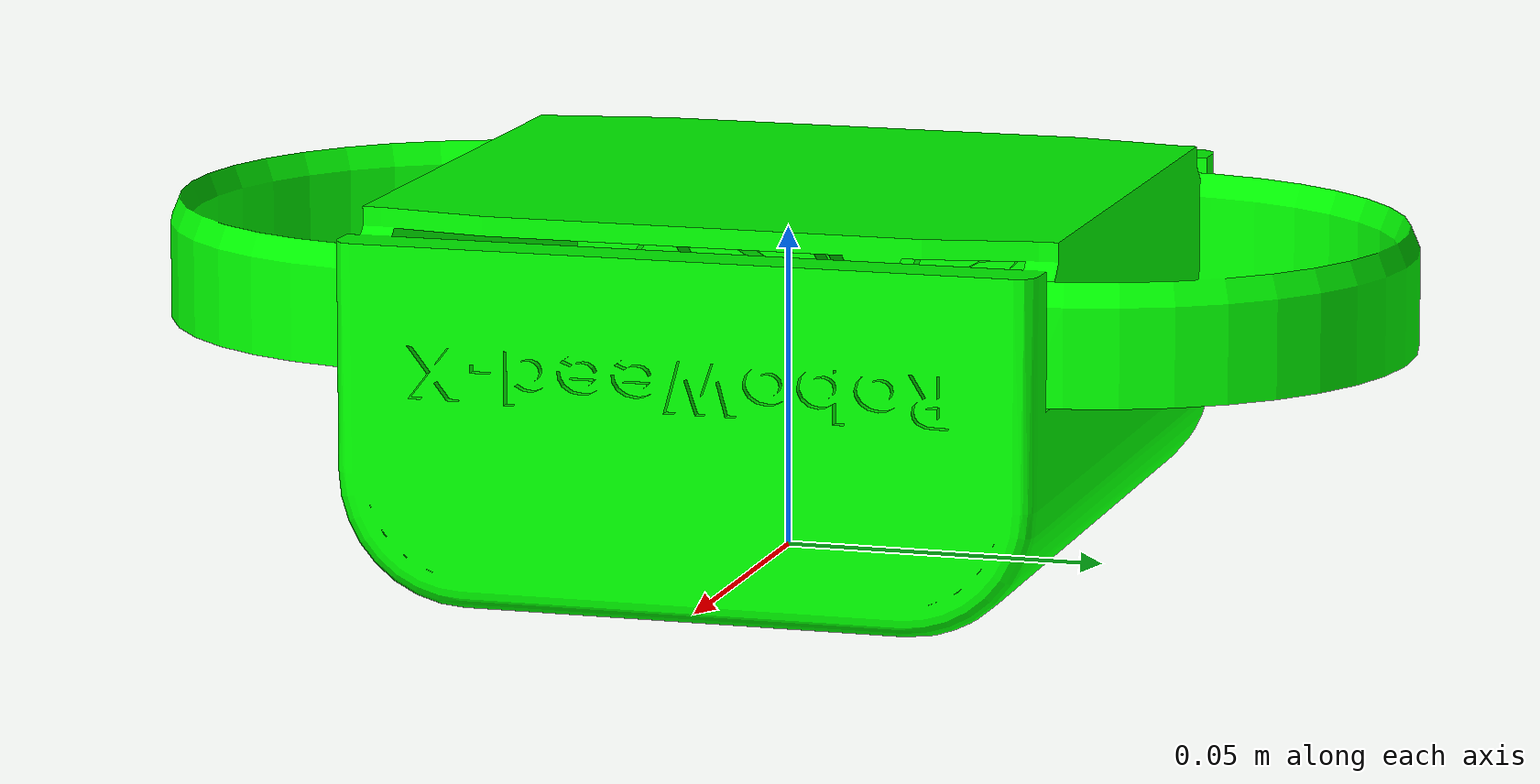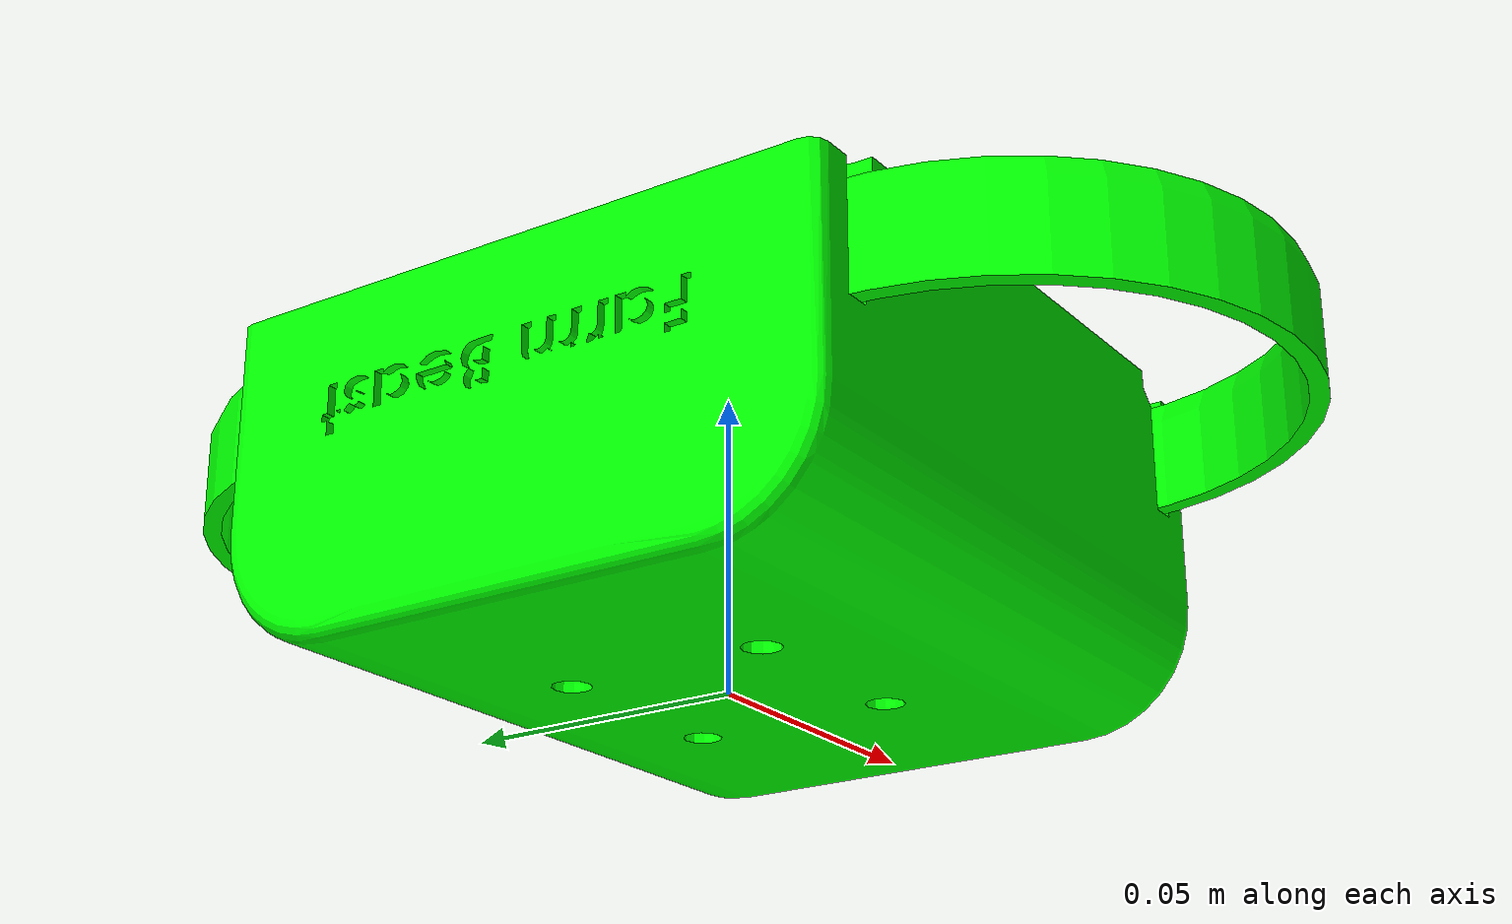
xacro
<?xml version="1.0"?>
<robot xmlns:xacro="http://www.ros.org/wiki/xacro" name="gripper">

    <xacro:include filename="$(find gripper_system_tests)/urdf/mech/gripper.urdf.xacro"/>
    <xacro:include filename="$(find gripper_system_tests)/urdf/control/gripper_control.urdf.xacro"/>

    <xacro:gripper/>
    <xacro:gripper_ros2_control/>

</robot>

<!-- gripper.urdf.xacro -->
<robot xmlns:xacro="http://www.ros.org/wiki/xacro">
    <xacro:macro name="gripper">
        <link name="tool_link">
            <inertial>
                <origin xyz="0.0 0.0 0.03" rpy="0.0 0.0 0.0"/>
                <mass value="0.23"/>
                <inertia ixx="1e-5" ixy="0.0" ixz="0.0" iyy="1e-5" iyz="0.0" izz="1e-5"/>
            </inertial>
            <visual>
                <origin xyz="0.0 0.0 0.0" rpy="0.0 0.0 0.0"/>
                <geometry>
                    <mesh filename="file://$(find dobot_e6_description)/meshes/weed_removal_tool/visual/gripper_housing.STL" />
                </geometry>
                <material name="green">
                    <color rgba="0.0 1.0 0.0 1.0"/>
                </material>
            </visual>
            <collision>
                <origin xyz="0.0 0.0 0.0" rpy="0.0 0.0 0.0"/>
                <geometry>
                    <mesh filename="file://$(find dobot_e6_description)/meshes/weed_removal_tool/visual/gripper_housing.STL" />
                </geometry>
            </collision>
        </link>

        <link name="blade_left_link">
            <inertial>
                <origin xyz="0.0 0.02 0.0" rpy="0.0 0.0 0.0"/>
                <mass value="0.03"/>
                <inertia ixx="1e-5" ixy="0.0" ixz="0.0" iyy="1e-5" iyz="0.0" izz="1e-5"/>
            </inertial>
            <visual>
                <origin xyz="0.0 0.0 0.0" rpy="0.0 0.0 0.0"/>
                <geometry>
                    <mesh filename="file://$(find dobot_e6_description)/meshes/weed_removal_tool/visual/blade_left.STL" />
                </geometry>
                <material name="green">
                    <color rgba="0.0 1.0 0.0 1.0"/>
                </material>
            </visual>
            <collision>
                <origin xyz="0.0 0.0 0.0" rpy="0.0 0.0 0.0"/>
                <geometry>
                    <mesh filename="file://$(find dobot_e6_description)/meshes/weed_removal_tool/visual/blade_left.STL" />
                </geometry>
            </collision>
        </link>

        <link name="blade_right_link">
            <inertial>
                <origin xyz="0.0 -0.02 0.0" rpy="0.0 0.0 0.0"/>
                <mass value="0.03"/>
                <inertia ixx="1e-5" ixy="0.0" ixz="0.0" iyy="1e-5" iyz="0.0" izz="1e-5"/>
            </inertial>
            <visual>
                <origin xyz="0.0 0.0 0.0" rpy="0.0 0.0 0.0"/>
                <geometry>
                    <mesh filename="file://$(find dobot_e6_description)/meshes/weed_removal_tool/visual/blade_right.STL" />
                </geometry>
                <material name="green">
                    <color rgba="0.0 1.0 0.0 1.0"/>
                </material>
            </visual>
            <collision>
                <origin xyz="0.0 0.0 0.0" rpy="0.0 0.0 0.0"/>
                <geometry>
                    <mesh filename="file://$(find dobot_e6_description)/meshes/weed_removal_tool/visual/blade_right.STL" />
                </geometry>
            </collision>
        </link>

        <link name="dummy_tcp"/>

        <link name="world"/>

        <joint name="world_to_tool_joint" type="fixed">
            <origin xyz="0.0 0.0 0.0"/>
            <parent link="world"/>
            <child link="tool_link"/>
        </joint>

        <joint name="joint_dummy_tcp" type="fixed">
            <origin xyz="0.0 0.0 0.08"/>
            <parent link="tool_link"/>
            <child link="dummy_tcp"/>
        </joint>

        <joint name="gripper_controller" type="revolute">
        <axis xyz="1 0 0"/>
        <limit lower="0.0" upper="1.57" effort="56.0" velocity="2.792527"/>
        <parent link="tool_link"/>
        <child link="blade_left_link"/>
        <origin xyz="0.0 0.023 0.030" rpy="0 0 0"/>
        </joint>

        <joint name="joint_tool_link_to_blade_right_link" type="revolute">
        <axis xyz="1 0 0"/>
        <limit lower="0.0" upper="1.57" effort="56.0" velocity="2.792527"/>
        <parent link="tool_link"/>
        <child link="blade_right_link"/>
        <origin xyz="0.0 -0.023 0.030" rpy="0 0 0"/>
        <mimic joint="gripper_controller" multiplier="-1.0" offset="0"/>
        </joint>
    </xacro:macro>
</robot>
